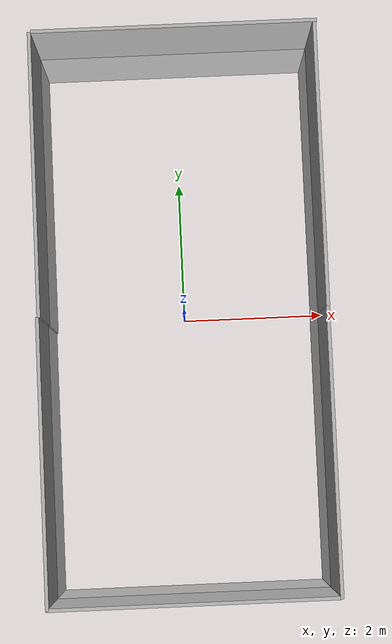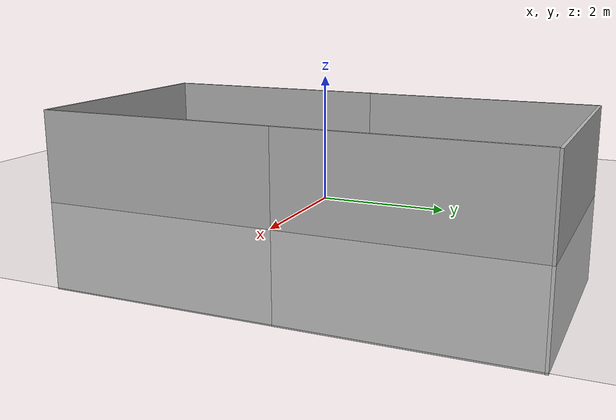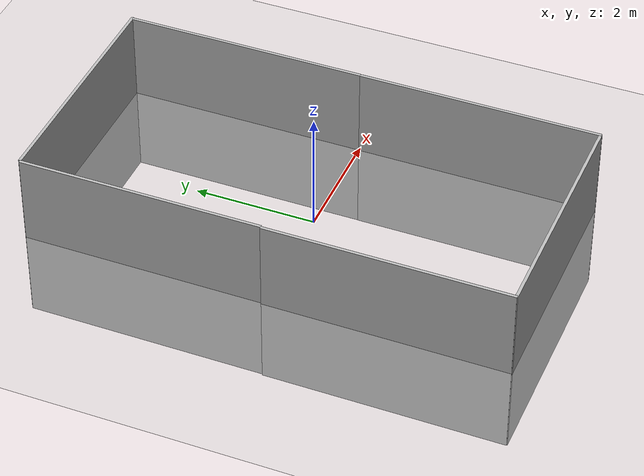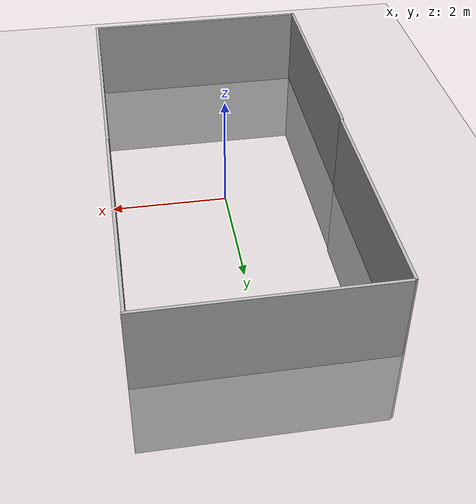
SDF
<sdf version="1.6">
 <world name="default">
  <light name="sun" type="directional">
   <pose>0 0 10 0 -0 0</pose>
   <diffuse>0.8 0.8 0.8 1</diffuse>
   <specular>0.2 0.2 0.2 1</specular>
   <attenuation>
    <range>1000</range>
    <constant>0.9</constant>
    <linear>0.01</linear>
    <quadratic>0.001</quadratic>
   </attenuation>
   <direction>-0.5 0.1 -0.9</direction>
  </light>
  <model name="ground_plane">
   <static>1</static>
   <link name="link">
    <collision name="collision">
     <geometry><plane><normal>0 0 1</normal><size>100 100</size></plane></geometry>
     <surface><friction><ode><mu>100</mu><mu2>50</mu2></ode></friction></surface>
    </collision>
    <visual name="visual">
     <cast_shadows>0</cast_shadows>
     <geometry><plane><normal>0 0 1</normal><size>100 100</size></plane></geometry>
     <material>
      <script><uri>file://media/materials/scripts/gazebo.material</uri><name>Gazebo/Grey</name></script>
     </material>
    </visual>
   </link>
  </model>
  <gravity>0 0 -9.8</gravity>
  <magnetic_field>6e-06 2.3e-05 -4.2e-05</magnetic_field>
  <atmosphere type="adiabatic"/>
  <physics name="default_physics" default="0" type="ode">
   <max_step_size>0.001</max_step_size>
   <real_time_factor>1</real_time_factor>
   <real_time_update_rate>1000</real_time_update_rate>
  </physics>
  <scene><ambient>0.4 0.4 0.4 1</ambient><background>0.7 0.7 0.7 1</background><shadows>1</shadows></scene>
  <spherical_coordinates>
   <surface_model>EARTH_WGS84</surface_model>
   <latitude_deg>0</latitude_deg>
   <longitude_deg>0</longitude_deg>
   <elevation>0</elevation>
   <heading_deg>0</heading_deg>
  </spherical_coordinates>
  <model name="wall4">
   <static>1</static>
   <link name="wall1">
    <pose>0 0 0 0 -0 1.57</pose>
    <collision name="collision"><geometry><box><size>4 0.05 3</size></box></geometry></collision>
    <visual name="visual"><geometry><box><size>4 0.05 3</size></box></geometry></visual>
   </link>
   <pose>1.97406 -1.98685 0 0 -0 0</pose>
  </model>
  <model name="wall4_clone">
   <static>1</static>
   <link name="wall1">
    <pose>0 0 0 0 -0 1.57</pose>
    <collision name="collision"><geometry><box><size>4 0.05 3</size></box></geometry></collision>
    <visual name="visual"><geometry><box><size>4 0.05 3</size></box></geometry></visual>
   </link>
   <pose>-2.02814 -1.9797 0 0 -0 0</pose>
  </model>
  <model name="wall4_clone_0">
   <static>1</static>
   <link name="wall1">
    <pose>0 0 0 0 -0 1.57</pose>
    <collision name="collision"><geometry><box><size>4 0.05 3</size></box></geometry></collision>
    <visual name="visual"><geometry><box><size>4 0.05 3</size></box></geometry></visual>
   </link>
   <pose>1.98139 2.00734 0 0 -0 0</pose>
  </model>
  <model name="wall4_clone_1">
   <static>1</static>
   <link name="wall1">
    <pose>0 0 0 0 -0 1.57</pose>
    <collision name="collision"><geometry><box><size>4 0.05 3</size></box></geometry></collision>
    <visual name="visual"><geometry><box><size>4 0.05 3</size></box></geometry></visual>
   </link>
   <pose>-2.00456 2.01428 0 0 -0 0</pose>
  </model>
  <model name="wall4_0">
   <static>1</static>
   <link name="wall1">
    <collision name="collision"><geometry><box><size>4 0.05 3</size></box></geometry></collision>
    <visual name="visual"><geometry><box><size>4 0.05 3</size></box></geometry></visual>
   </link>
   <pose>-0.049288 -3.96858 0 0 -0 0</pose>
  </model>
  <model name="wall4_1">
   <static>1</static>
   <link name="wall1">
    <collision name="collision"><geometry><box><size>4 0.05 3</size></box></geometry></collision>
    <visual name="visual"><geometry><box><size>4 0.05 3</size></box></geometry></visual>
   </link>
   <pose>0.016671 4.01874 0 0 -0 0</pose>
  </model>
 </world>
</sdf>
